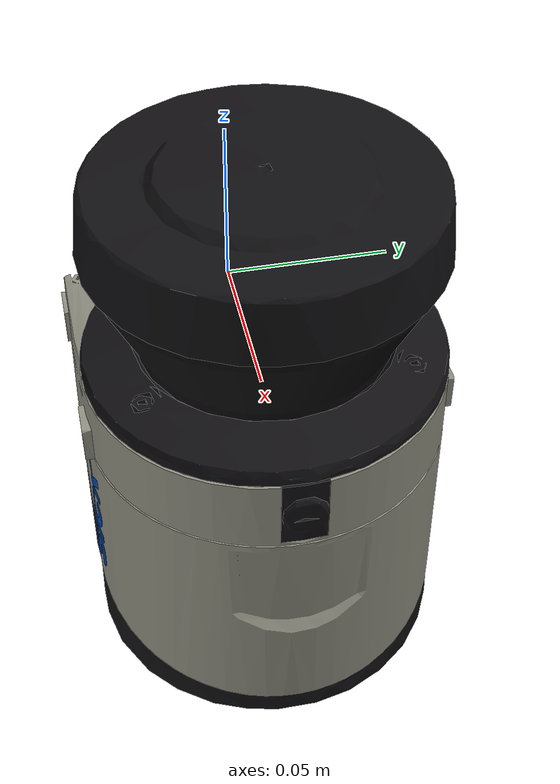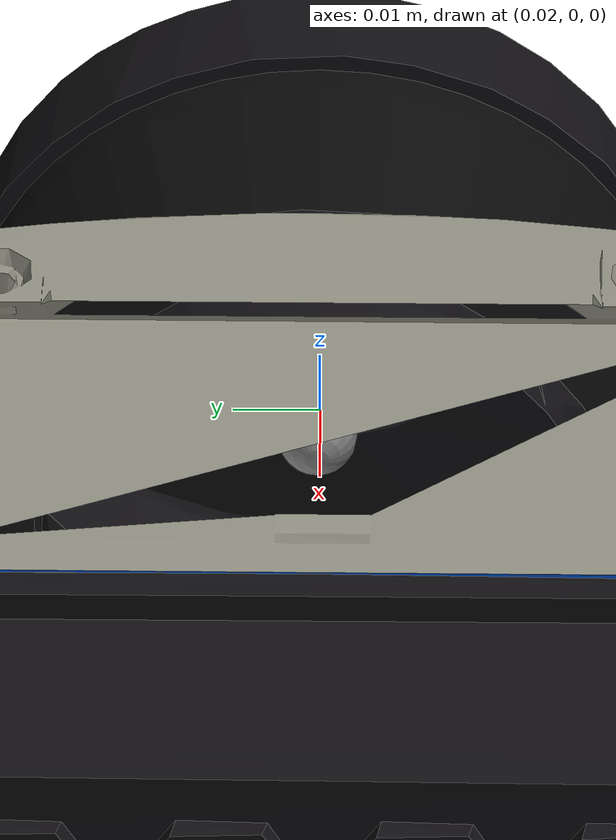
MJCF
<mujoco model="sick_lms1xx">
  <compiler angle="radian" meshdir="meshes" autolimits="true"/>

  <asset>
    <material name="sick_lms1xx_small__m0_mat" rgba="0.0003 0.2793 0.7238 1"/>
    <material name="sick_lms1xx_small__m1_mat" rgba="0.0639 0.0581 0.0679 1"/>
    <material name="sick_lms1xx_small__m2_mat" rgba="0.0291 0.0291 0.0291 1"/>
    <material name="sick_lms1xx_small__m3_mat" rgba="0.5647 0.5647 0.5101 1"/>
    <mesh name="sick_lms1xx_small__m0" file="sick_lms1xx_small__m0.obj"/>
    <mesh name="sick_lms1xx_small__m1" file="sick_lms1xx_small__m1.obj"/>
    <mesh name="sick_lms1xx_small__m2" file="sick_lms1xx_small__m2.obj"/>
    <mesh name="sick_lms1xx_small__m3" file="sick_lms1xx_small__m3.obj"/>
  </asset>

  <worldbody>
    <body name="mount">
      <inertial pos="0.05275 0 -0.0082" mass="1.1" diaginertia="0.0033572 0.0034239 0.0019816"/>
      <geom name="sick_lms1xx_visual_0" type="mesh" mesh="sick_lms1xx_small__m0" material="sick_lms1xx_small__m0_mat"
            contype="0" conaffinity="0"/>
      <geom name="sick_lms1xx_visual_1" type="mesh" mesh="sick_lms1xx_small__m1" material="sick_lms1xx_small__m1_mat"
            contype="0" conaffinity="0"/>
      <geom name="sick_lms1xx_visual_2" type="mesh" mesh="sick_lms1xx_small__m2" material="sick_lms1xx_small__m2_mat"
            contype="0" conaffinity="0"/>
      <geom name="sick_lms1xx_visual_3" type="mesh" mesh="sick_lms1xx_small__m3" material="sick_lms1xx_small__m3_mat"
            contype="0" conaffinity="0"/>
      <!-- The vendor collides with a mesh; this box bounds that collision mesh. -->
      <geom name="sick_lms1xx_collision" type="box" pos="0.05275 0 -0.0082" size="0.05285 0.0511 0.0809" group="3"/>
      <site name="scan" pos="0.0549 0 0.0367" size="0.005"/>
    </body>
  </worldbody>
</mujoco>
